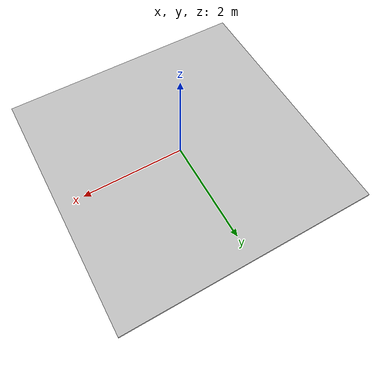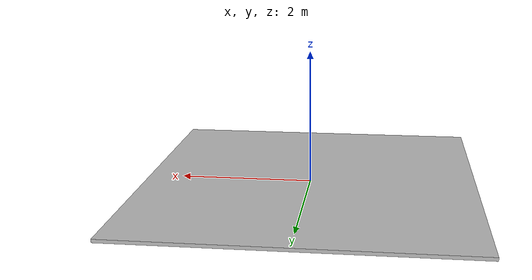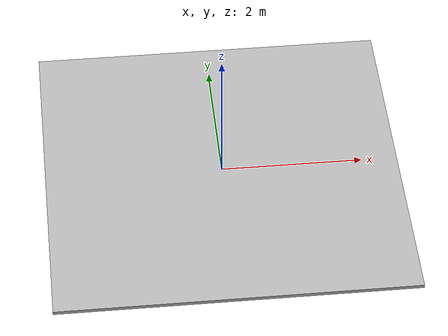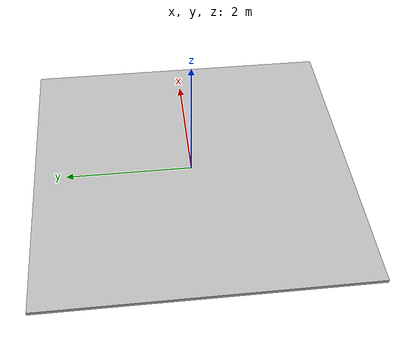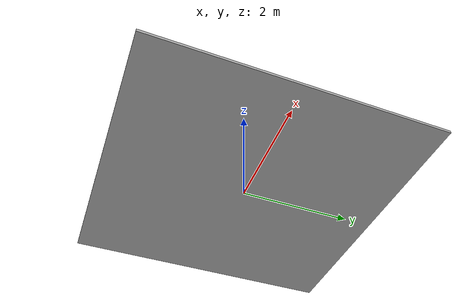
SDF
<?xml version='1.0'?>
<sdf version='1.6'>
  <model name='Floor'>
    <link name='main'>
	<pose frame=''>0 0 0.01 0 0 0</pose>
      <collision name='main_Collision'>
        <geometry>
          <box>
            <size>5 5 0.05</size>
          </box>
        </geometry>
       </collision>
      <visual name='main_Visual'>
        <geometry>
          <box>
          <size>5 5 0.05</size>
	</box>
        </geometry>
           <material>
          <script>
            <uri>model://Floor_verysmall/materials/scripts</uri>
            <uri>model://Floor_verysmall/materials/textures</uri>
            <name>floor</name>
          </script>
        </material>
      </visual>
     </link>
    <static>1</static>
  </model>
</sdf>
